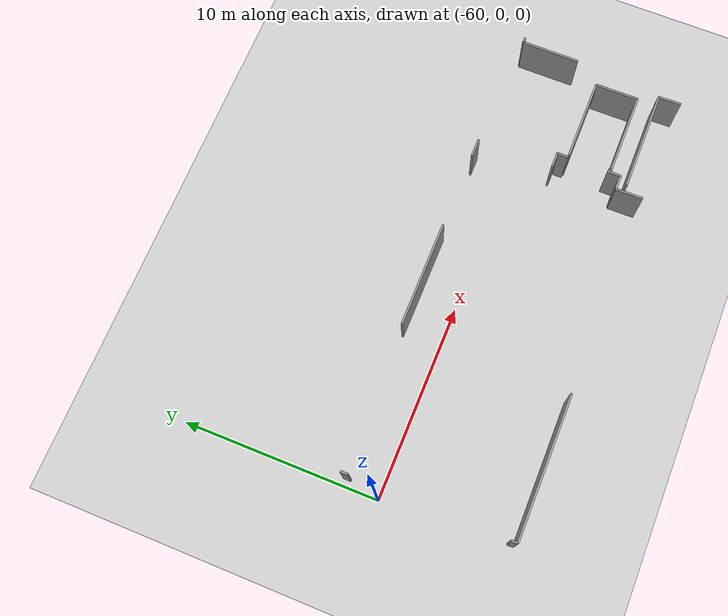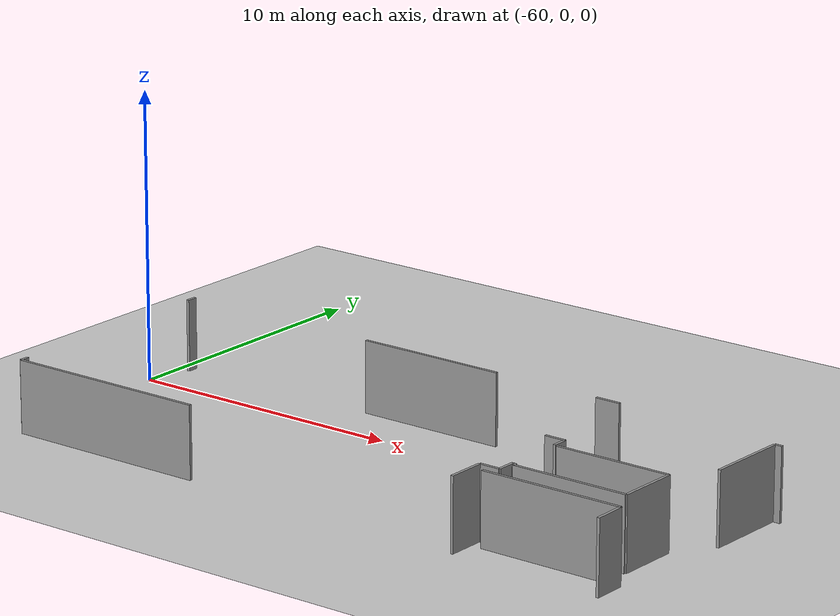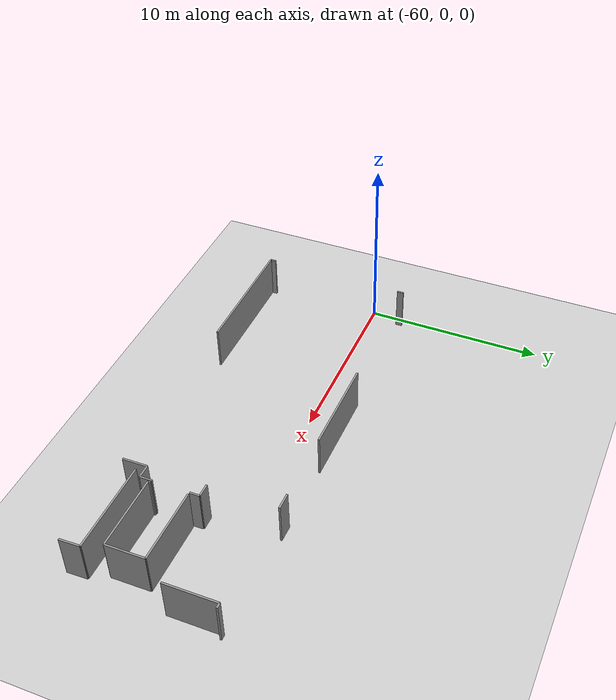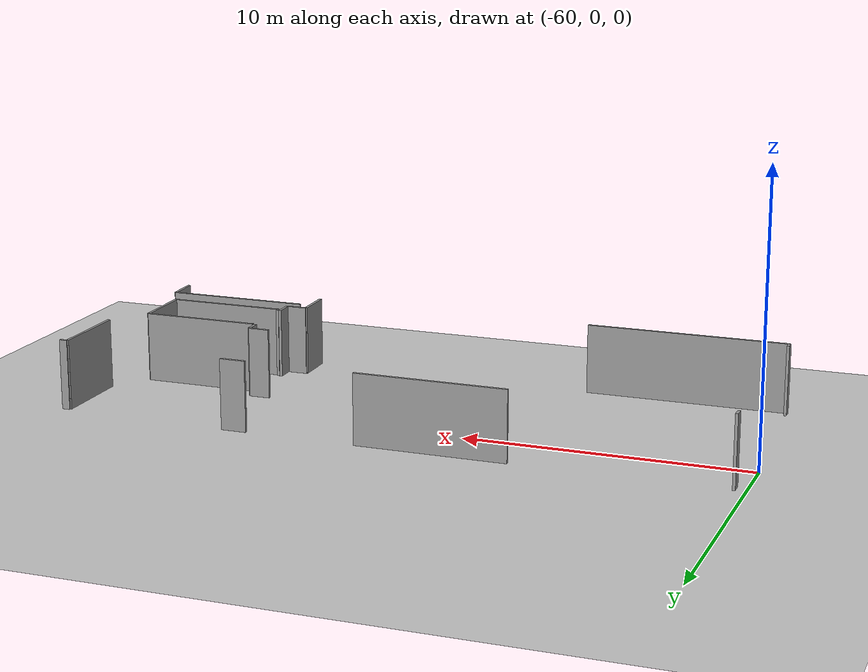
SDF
<sdf version="1.6">
 <world name="default">
  <model name="ground_plane">
   <static>1</static>
   <link name="link">
    <collision name="collision">
     <geometry><plane><normal>0 0 1</normal><size>100 100</size></plane></geometry>
     <surface><friction><ode><mu>100</mu><mu2>50</mu2></ode></friction></surface>
    </collision>
    <visual name="visual">
     <cast_shadows>0</cast_shadows>
     <geometry><plane><normal>0 0 1</normal><size>100 100</size></plane></geometry>
     <material>
      <script><uri>file://media/materials/scripts/gazebo.material</uri><name>Gazebo/Grey</name></script>
     </material>
    </visual>
   </link>
  </model>
  <model name="50041169">
   <static>1</static>
   <link name="Wall_27">
    <collision name="Wall_27_Collision">
     <geometry><box><size>7.21173498534 0.1 2.5</size></box></geometry>
     <pose>3.60586749267 0 1.25 0 0 0</pose>
    </collision>
    <visual name="Wall_27_Visual">
     <pose>3.60586749267 0 1.25 0 0 0</pose>
     <geometry><box><size>7.21173498534 0.1 2.5</size></box></geometry>
     <material>
      <script><uri>file://media/materials/scripts/gazebo.material</uri><name>Gazebo/Grey</name></script>
      <ambient>1 1 1 1</ambient>
     </material>
    </visual>
    <pose>19.1062927653 -35.5135008188 0 0 0 3.14159265359</pose>
   </link>
   <link name="Wall_28">
    <collision name="Wall_28_Collision">
     <geometry><box><size>0.325619184238 0.1 2.5</size></box></geometry>
     <pose>0.162809592119 0 1.25 0 0 0</pose>
    </collision>
    <visual name="Wall_28_Visual">
     <pose>0.162809592119 0 1.25 0 0 0</pose>
     <geometry><box><size>0.325619184238 0.1 2.5</size></box></geometry>
     <material>
      <script><uri>file://media/materials/scripts/gazebo.material</uri><name>Gazebo/Grey</name></script>
      <ambient>1 1 1 1</ambient>
     </material>
    </visual>
    <pose>11.8945577799 -35.5135008188 0 0 0 1.57079632679</pose>
   </link>
   <link name="Wall_29">
    <collision name="Wall_29_Collision">
     <geometry><box><size>0.375255480939 0.1 2.5</size></box></geometry>
     <pose>0.187627740469 0 1.25 0 0 0</pose>
    </collision>
    <visual name="Wall_29_Visual">
     <pose>0.187627740469 0 1.25 0 0 0</pose>
     <geometry><box><size>0.375255480939 0.1 2.5</size></box></geometry>
     <material>
      <script><uri>file://media/materials/scripts/gazebo.material</uri><name>Gazebo/Grey</name></script>
      <ambient>1 1 1 1</ambient>
     </material>
    </visual>
    <pose>11.8945577799 -27.3662930192 0 0 0 1.57079632679</pose>
   </link>
   <link name="Wall_38">
    <collision name="Wall_38_Collision">
     <geometry><box><size>5.35691163216 0.1 2.5</size></box></geometry>
     <pose>2.67845581608 0 1.25 0 0 0</pose>
    </collision>
    <visual name="Wall_38_Visual">
     <pose>2.67845581608 0 1.25 0 0 0</pose>
     <geometry><box><size>5.35691163216 0.1 2.5</size></box></geometry>
     <material>
      <script><uri>file://media/materials/scripts/gazebo.material</uri><name>Gazebo/Grey</name></script>
      <ambient>1 1 1 1</ambient>
     </material>
    </visual>
    <pose>19.291889353 -26.9911644853 0 0 0 0.0</pose>
   </link>
   <link name="Wall_39">
    <collision name="Wall_39_Collision">
     <geometry><box><size>0.914018762774 0.1 2.5</size></box></geometry>
     <pose>0.457009381387 0 1.25 0 0 0</pose>
    </collision>
    <visual name="Wall_39_Visual">
     <pose>0.457009381387 0 1.25 0 0 0</pose>
     <geometry><box><size>0.914018762774 0.1 2.5</size></box></geometry>
     <material>
      <script><uri>file://media/materials/scripts/gazebo.material</uri><name>Gazebo/Grey</name></script>
      <ambient>1 1 1 1</ambient>
     </material>
    </visual>
    <pose>28.5700684245 -26.9911644853 0 0 0 0.0</pose>
   </link>
   <link name="Wall_41">
    <collision name="Wall_41_Collision">
     <geometry><box><size>0.748733703172 0.1 2.5</size></box></geometry>
     <pose>0.374366851586 0 1.25 0 0 0</pose>
    </collision>
    <visual name="Wall_41_Visual">
     <pose>0.374366851586 0 1.25 0 0 0</pose>
     <geometry><box><size>0.748733703172 0.1 2.5</size></box></geometry>
     <material>
      <script><uri>file://media/materials/scripts/gazebo.material</uri><name>Gazebo/Grey</name></script>
      <ambient>1 1 1 1</ambient>
     </material>
    </visual>
    <pose>29.4840871872 -30.8766328564 0 0 0 0.0</pose>
   </link>
   <link name="Wall_42">
    <collision name="Wall_42_Collision">
     <geometry><box><size>0.546760946009 0.1 2.5</size></box></geometry>
     <pose>0.273380473005 0 1.25 0 0 0</pose>
    </collision>
    <visual name="Wall_42_Visual">
     <pose>0.273380473005 0 1.25 0 0 0</pose>
     <geometry><box><size>0.546760946009 0.1 2.5</size></box></geometry>
     <material>
      <script><uri>file://media/materials/scripts/gazebo.material</uri><name>Gazebo/Grey</name></script>
      <ambient>1 1 1 1</ambient>
     </material>
    </visual>
    <pose>30.2328208904 -30.8766328564 0 0 0 -1.57079632679</pose>
   </link>
   <link name="Wall_43">
    <collision name="Wall_43_Collision">
     <geometry><box><size>0.681705660569 0.1 2.5</size></box></geometry>
     <pose>0.340852830284 0 1.25 0 0 0</pose>
    </collision>
    <visual name="Wall_43_Visual">
     <pose>0.340852830284 0 1.25 0 0 0</pose>
     <geometry><box><size>0.681705660569 0.1 2.5</size></box></geometry>
     <material>
      <script><uri>file://media/materials/scripts/gazebo.material</uri><name>Gazebo/Grey</name></script>
      <ambient>1 1 1 1</ambient>
     </material>
    </visual>
    <pose>30.2328208904 -33.4931385119 0 0 0 -1.57079632679</pose>
   </link>
   <link name="Wall_44">
    <collision name="Wall_44_Collision">
     <geometry><box><size>0.740736038998 0.1 2.5</size></box></geometry>
     <pose>0.370368019499 0 1.25 0 0 0</pose>
    </collision>
    <visual name="Wall_44_Visual">
     <pose>0.370368019499 0 1.25 0 0 0</pose>
     <geometry><box><size>0.740736038998 0.1 2.5</size></box></geometry>
     <material>
      <script><uri>file://media/materials/scripts/gazebo.material</uri><name>Gazebo/Grey</name></script>
      <ambient>1 1 1 1</ambient>
     </material>
    </visual>
    <pose>30.2328208904 -34.1748441725 0 0 0 3.14159265359</pose>
   </link>
   <link name="Wall_45">
    <collision name="Wall_45_Collision">
     <geometry><box><size>1.38875052008 0.1 2.5</size></box></geometry>
     <pose>0.69437526004 0 1.25 0 0 0</pose>
    </collision>
    <visual name="Wall_45_Visual">
     <pose>0.69437526004 0 1.25 0 0 0</pose>
     <geometry><box><size>1.38875052008 0.1 2.5</size></box></geometry>
     <material>
      <script><uri>file://media/materials/scripts/gazebo.material</uri><name>Gazebo/Grey</name></script>
      <ambient>1 1 1 1</ambient>
     </material>
    </visual>
    <pose>29.4920848514 -34.1748441725 0 0 0 -1.56028387011</pose>
   </link>
   <link name="Wall_46">
    <collision name="Wall_46_Collision">
     <geometry><box><size>4.18506341005 0.1 2.5</size></box></geometry>
     <pose>2.09253170503 0 1.25 0 0 0</pose>
    </collision>
    <visual name="Wall_46_Visual">
     <pose>2.09253170503 0 1.25 0 0 0</pose>
     <geometry><box><size>4.18506341005 0.1 2.5</size></box></geometry>
     <material>
      <script><uri>file://media/materials/scripts/gazebo.material</uri><name>Gazebo/Grey</name></script>
      <ambient>1 1 1 1</ambient>
     </material>
    </visual>
    <pose>34.5332791693 -33.6402701433 0 0 0 3.14159265359</pose>
   </link>
   <link name="Wall_47">
    <collision name="Wall_47_Collision">
     <geometry><box><size>0.132278826501 0.1 2.5</size></box></geometry>
     <pose>0.0661394132507 0 1.25 0 0 0</pose>
    </collision>
    <visual name="Wall_47_Visual">
     <pose>0.0661394132507 0 1.25 0 0 0</pose>
     <geometry><box><size>0.132278826501 0.1 2.5</size></box></geometry>
     <material>
      <script><uri>file://media/materials/scripts/gazebo.material</uri><name>Gazebo/Grey</name></script>
      <ambient>1 1 1 1</ambient>
     </material>
    </visual>
    <pose>30.3482157592 -33.6402701433 0 0 0 1.57079632679</pose>
   </link>
   <link name="Wall_48">
    <collision name="Wall_48_Collision">
     <geometry><box><size>4.17503459307 0.1 2.5</size></box></geometry>
     <pose>2.08751729654 0 1.25 0 0 0</pose>
    </collision>
    <visual name="Wall_48_Visual">
     <pose>2.08751729654 0 1.25 0 0 0</pose>
     <geometry><box><size>4.17503459307 0.1 2.5</size></box></geometry>
     <material>
      <script><uri>file://media/materials/scripts/gazebo.material</uri><name>Gazebo/Grey</name></script>
      <ambient>1 1 1 1</ambient>
     </material>
    </visual>
    <pose>30.3482157592 -31.4401508131 0 0 0 0.0</pose>
   </link>
   <link name="Wall_49">
    <collision name="Wall_49_Collision">
     <geometry><box><size>2.20014218732 0.1 2.5</size></box></geometry>
     <pose>1.10007109366 0 1.25 0 0 0</pose>
    </collision>
    <visual name="Wall_49_Visual">
     <pose>1.10007109366 0 1.25 0 0 0</pose>
     <geometry><box><size>2.20014218732 0.1 2.5</size></box></geometry>
     <material>
      <script><uri>file://media/materials/scripts/gazebo.material</uri><name>Gazebo/Grey</name></script>
      <ambient>1 1 1 1</ambient>
     </material>
    </visual>
    <pose>34.5232503523 -31.4401508131 0 0 0 -1.56623805244</pose>
   </link>
   <link name="Wall_52">
    <collision name="Wall_52_Collision">
     <geometry><box><size>2.95812016808 0.1 2.5</size></box></geometry>
     <pose>1.47906008404 0 1.25 0 0 0</pose>
    </collision>
    <visual name="Wall_52_Visual">
     <pose>1.47906008404 0 1.25 0 0 0</pose>
     <geometry><box><size>2.95812016808 0.1 2.5</size></box></geometry>
     <material>
      <script><uri>file://media/materials/scripts/gazebo.material</uri><name>Gazebo/Grey</name></script>
      <ambient>1 1 1 1</ambient>
     </material>
    </visual>
    <pose>35.4436164676 -30.1438944816 0 0 0 1.57079632679</pose>
   </link>
   <link name="Wall_53">
    <collision name="Wall_53_Collision">
     <geometry><box><size>0.287027280921 0.1 2.5</size></box></geometry>
     <pose>0.143513640461 0 1.25 0 0 0</pose>
    </collision>
    <visual name="Wall_53_Visual">
     <pose>0.143513640461 0 1.25 0 0 0</pose>
     <geometry><box><size>0.287027280921 0.1 2.5</size></box></geometry>
     <material>
      <script><uri>file://media/materials/scripts/gazebo.material</uri><name>Gazebo/Grey</name></script>
      <ambient>1 1 1 1</ambient>
     </material>
    </visual>
    <pose>35.4436164676 -27.1857743135 0 0 0 0.0</pose>
   </link>
   <link name="Wall_162">
    <collision name="Wall_162_Collision">
     <geometry><box><size>5.13691239384 0.1 2.5</size></box></geometry>
     <pose>2.56845619692 0 1.25 0 0 0</pose>
    </collision>
    <visual name="Wall_162_Visual">
     <pose>2.56845619692 0 1.25 0 0 0</pose>
     <geometry><box><size>5.13691239384 0.1 2.5</size></box></geometry>
     <material>
      <script><uri>file://media/materials/scripts/gazebo.material</uri><name>Gazebo/Grey</name></script>
      <ambient>1 1 1 1</ambient>
     </material>
    </visual>
    <pose>29.896665101 -34.6003706854 0 0 0 0.0</pose>
   </link>
   <link name="Wall_163">
    <collision name="Wall_163_Collision">
     <geometry><box><size>1.15630802888 0.1 2.5</size></box></geometry>
     <pose>0.578154014441 0 1.25 0 0 0</pose>
    </collision>
    <visual name="Wall_163_Visual">
     <pose>0.578154014441 0 1.25 0 0 0</pose>
     <geometry><box><size>1.15630802888 0.1 2.5</size></box></geometry>
     <material>
      <script><uri>file://media/materials/scripts/gazebo.material</uri><name>Gazebo/Grey</name></script>
      <ambient>1 1 1 1</ambient>
     </material>
    </visual>
    <pose>35.0335774948 -34.6003706854 0 0 0 -1.54697039481</pose>
   </link>
   <pose>-71.5 28.8982938316 0 0 0 0</pose>
  </model>
 </world>
</sdf>
